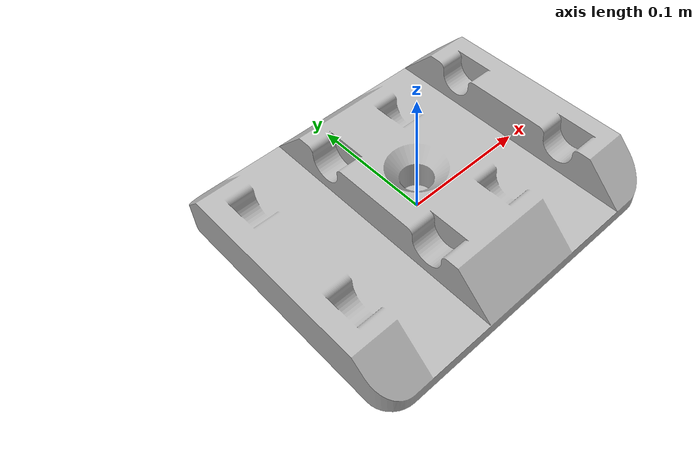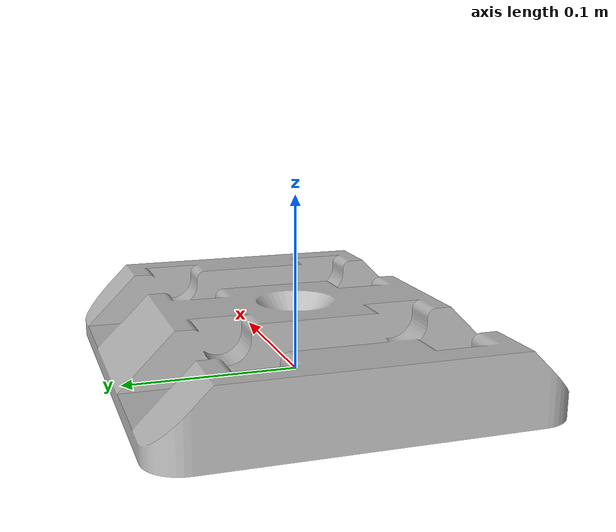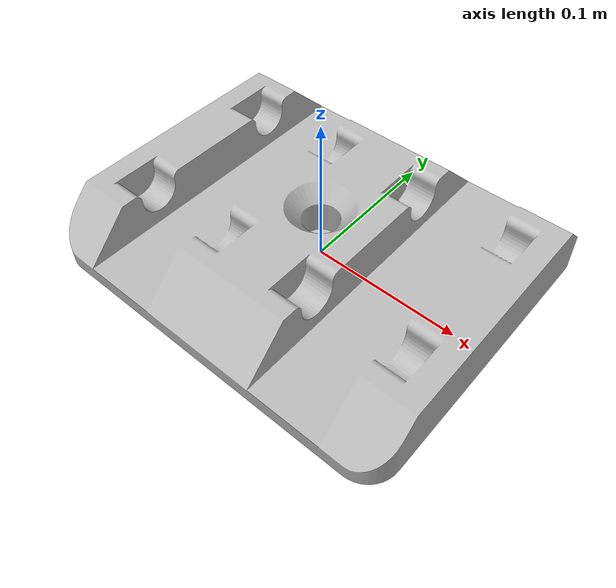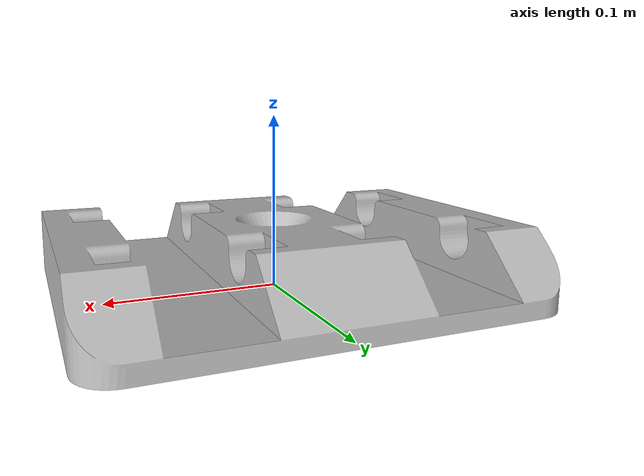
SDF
<?xml version="1.0" ?>
<sdf version="1.11">
  <model name="kit_tray">

    <link name="base_link">
      <visual name="visual">
        <geometry>
          <mesh>
            <uri>model://kit_tray/meshes/kit_tray_visual.glb</uri>
          </mesh>
        </geometry>
      </visual>

      <collision name="collision">
        <geometry>
          <mesh>
            <uri>model://kit_tray/meshes/kit_tray_collision.stl</uri>
          </mesh>
        </geometry>
      </collision>
    </link>

    <link name="center_slot_link">
      <pose relative_to="base_link">0.0 0.0 0.0095 0.0 0.0 0.0</pose>
      <collision name="collision">
        <geometry>
          <cylinder>
            <radius>0.012</radius>
            <length>0.001</length>
          </cylinder>
        </geometry>
      </collision>

      <sensor name='contact_sensor' type='contact'>
        <update_rate>30</update_rate>
        <contact>
          <collision>collision</collision>
        </contact>
        <plugin
          filename="libContactPlugin.so"
          name="ariac_plugins::ContactPlugin">
          <search_term>cell</search_term>
          <update_rate>30</update_rate>
        </plugin>
      </sensor>
    </link>

    <joint name="center_slot_joint" type="fixed">
      <parent>base_link</parent>
      <child>center_slot_link</child>
    </joint>

    <link name="slot_1_link">
      <pose relative_to="base_link">-0.065 0.05 0.032 0 0 0</pose>
      <collision name="left">
        <pose>-0.035 0 0 0 0 0</pose>
        <geometry>
          <mesh>
            <uri>model://kit_tray/meshes/kit_tray_slot_collision.stl</uri>
          </mesh>
        </geometry>
      </collision>

      <sensor name='left_contact_sensor' type='contact'>
        <update_rate>30</update_rate>
        <contact>
          <collision>left</collision>
        </contact>
        <plugin
          filename="libContactPlugin.so"
          name="ariac_plugins::ContactPlugin">
          <search_term>cell</search_term>
          <update_rate>30</update_rate>
        </plugin>
      </sensor>

      <collision name="right">
        <pose>0.035 0 0 0 0 0</pose>
        <geometry>
          <mesh>
            <uri>model://kit_tray/meshes/kit_tray_slot_collision.stl</uri>
          </mesh>
        </geometry>
      </collision>

      <sensor name='right_contact_sensor' type='contact'>
        <update_rate>30</update_rate>
        <contact>
          <collision>right</collision>
        </contact>
        <plugin
          filename="libContactPlugin.so"
          name="ariac_plugins::ContactPlugin">
          <search_term>cell</search_term>
          <update_rate>30</update_rate>
        </plugin>
      </sensor>
    </link>

    <link name="slot_2_link">
      <pose relative_to="base_link">0.065 0.05 0.032 0 0 0</pose>

      <collision name="left">
        <pose>-0.035 0 0 0 0 0</pose>
        <geometry>
          <mesh>
            <uri>model://kit_tray/meshes/kit_tray_slot_collision.stl</uri>
          </mesh>
        </geometry>
      </collision>

      <sensor name='left_contact_sensor' type='contact'>
        <update_rate>30</update_rate>
        <contact>
          <collision>left</collision>
        </contact>
        <plugin
          filename="libContactPlugin.so"
          name="ariac_plugins::ContactPlugin">
          <search_term>cell</search_term>
          <update_rate>30</update_rate>
        </plugin>
      </sensor>

      <collision name="right">
        <pose>0.035 0 0 0 0 0</pose>
        <geometry>
          <mesh>
            <uri>model://kit_tray/meshes/kit_tray_slot_collision.stl</uri>
          </mesh>
        </geometry>
      </collision>

      <sensor name='right_contact_sensor' type='contact'>
        <update_rate>30</update_rate>
        <contact>
          <collision>right</collision>
        </contact>
        <plugin
          filename="libContactPlugin.so"
          name="ariac_plugins::ContactPlugin">
          <search_term>cell</search_term>
          <update_rate>30</update_rate>
        </plugin>
      </sensor>
    </link>

    <link name="slot_3_link">
      <pose relative_to="base_link">-0.065 -0.05 0.032 0 0 0</pose>

      <collision name="left">
        <pose>-0.035 0 0 0 0 0</pose>
        <geometry>
          <mesh>
            <uri>model://kit_tray/meshes/kit_tray_slot_collision.stl</uri>
          </mesh>
        </geometry>
      </collision>

      <sensor name='left_contact_sensor' type='contact'>
        <update_rate>30</update_rate>
        <contact>
          <collision>left</collision>
        </contact>
        <plugin
          filename="libContactPlugin.so"
          name="ariac_plugins::ContactPlugin">
          <search_term>cell</search_term>
          <update_rate>30</update_rate>
        </plugin>
      </sensor>

      <collision name="right">
        <pose>0.035 0 0 0 0 0</pose>
        <geometry>
          <mesh>
            <uri>model://kit_tray/meshes/kit_tray_slot_collision.stl</uri>
          </mesh>
        </geometry>
      </collision>

      <sensor name='right_contact_sensor' type='contact'>
        <update_rate>30</update_rate>
        <contact>
          <collision>right</collision>
        </contact>
        <plugin
          filename="libContactPlugin.so"
          name="ariac_plugins::ContactPlugin">
          <search_term>cell</search_term>
          <update_rate>30</update_rate>
        </plugin>
      </sensor>
    </link>

    <link name="slot_4_link">
      <pose relative_to="base_link">0.065 -0.05 0.032 0 0 0</pose>

      <collision name="left">
        <pose>-0.035 0 0 0 0 0</pose>
        <geometry>
          <mesh>
            <uri>model://kit_tray/meshes/kit_tray_slot_collision.stl</uri>
          </mesh>
        </geometry>
      </collision>

      <sensor name='left_contact_sensor' type='contact'>
        <update_rate>30</update_rate>
        <contact>
          <collision>left</collision>
        </contact>
        <plugin
          filename="libContactPlugin.so"
          name="ariac_plugins::ContactPlugin">
          <search_term>cell</search_term>
          <update_rate>30</update_rate>
        </plugin>
      </sensor>

      <collision name="right">
        <pose>0.035 0 0 0 0 0</pose>
        <geometry>
          <mesh>
            <uri>model://kit_tray/meshes/kit_tray_slot_collision.stl</uri>
          </mesh>
        </geometry>
      </collision>

      <sensor name='right_contact_sensor' type='contact'>
        <update_rate>30</update_rate>
        <contact>
          <collision>right</collision>
        </contact>
        <plugin
          filename="libContactPlugin.so"
          name="ariac_plugins::ContactPlugin">
          <search_term>cell</search_term>
          <update_rate>30</update_rate>
        </plugin>
      </sensor>
    </link>

    <joint name="slot_1_joint" type="fixed">
      <parent>base_link</parent>
      <child>slot_1_link</child>
    </joint>

    <joint name="slot_2_joint" type="fixed">
      <parent>base_link</parent>
      <child>slot_2_link</child>
    </joint>

    <joint name="slot_3_joint" type="fixed">
      <parent>base_link</parent>
      <child>slot_3_link</child>
    </joint>

    <joint name="slot_4_joint" type="fixed">
      <parent>base_link</parent>
      <child>slot_4_link</child>
    </joint>

    <plugin
      filename="libKitTrayPlugin.so"
      name="ariac_plugins::KitTrayPlugin">
    </plugin>

  </model>

</sdf>
